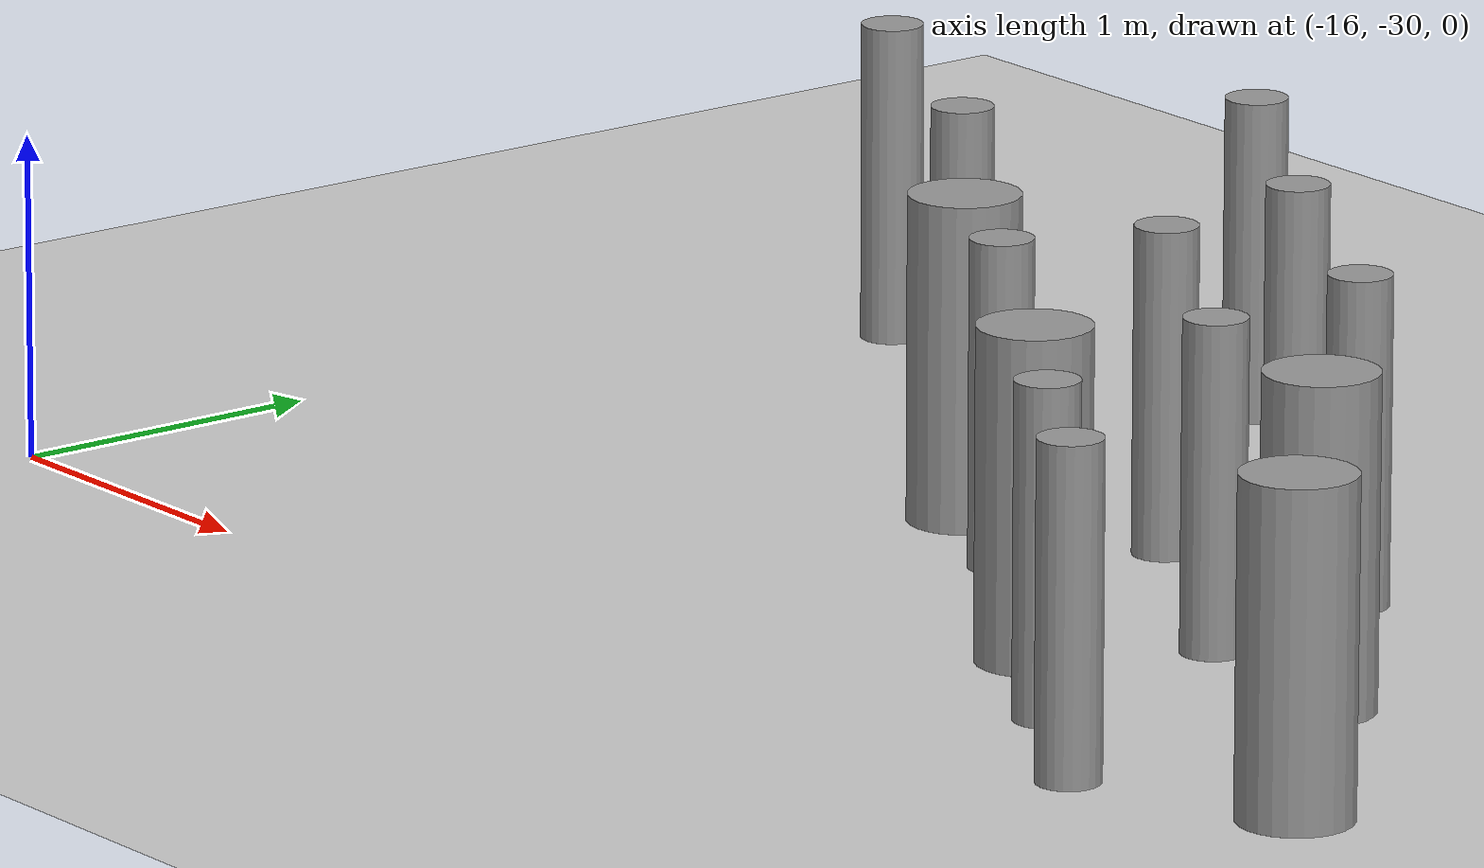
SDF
<sdf version="1.6">
 <world name="default">
  <model name="ground_plane">
   <static>1</static>
   <link name="link">
    <collision name="collision">
     <geometry><plane><normal>0 0 1</normal><size>100 100</size></plane></geometry>
     <surface><friction><ode><mu>100</mu><mu2>50</mu2></ode></friction></surface>
    </collision>
    <visual name="visual">
     <cast_shadows>0</cast_shadows>
     <geometry><plane><normal>0 0 1</normal><size>100 100</size></plane></geometry>
     <material>
      <script><uri>file://media/materials/scripts/gazebo.material</uri><name>Gazebo/Grey</name></script>
     </material>
    </visual>
   </link>
  </model>
  <model name="cyl_wall_clone_clone_1_clone_clone_0_clone">
   <link name="link_0">
    <pose>-2.73893 -0.366465 0 0 -0 0</pose>
    <inertial>
     <mass>0.0374993</mass>
     <inertia>
      <ixx>0.00321281</ixx>
      <ixy>0</ixy>
      <ixz>0</ixz>
      <iyy>0.00321281</iyy>
      <iyz>0</iyz>
      <izz>0.000175774</izz>
     </inertia>
    </inertial>
    <visual name="visual">
     <geometry><cylinder><radius>0.0968661</radius><length>1</length></cylinder></geometry>
     <material>
      <lighting>1</lighting>
      <script><uri>file://media/materials/scripts/gazebo.material</uri><name>Gazebo/Grey</name></script>
      <ambient>0.3 0.3 0.3 1</ambient>
      <diffuse>0.7 0.7 0.7 1</diffuse>
      <specular>0.01 0.01 0.01 1</specular>
      <emissive>0 0 0 1</emissive>
     </material>
    </visual>
    <collision name="collision">
     <geometry><cylinder><radius>0.096866</radius><length>1</length></cylinder></geometry>
     <surface>
      <friction>
       <ode><mu>1</mu><mu2>1</mu2><fdir1>0 0 0</fdir1><slip1>0</slip1><slip2>0</slip2></ode>
       <torsional>
        <coefficient>1</coefficient>
        <patch_radius>0</patch_radius>
        <surface_radius>0</surface_radius>
        <use_patch_radius>1</use_patch_radius>
        <ode><slip>0</slip></ode>
       </torsional>
      </friction>
      <bounce><restitution_coefficient>0</restitution_coefficient><threshold>1e+06</threshold></bounce>
      <contact>
       <collide_without_contact>0</collide_without_contact>
       <collide_without_contact_bitmask>1</collide_without_contact_bitmask>
       <collide_bitmask>1</collide_bitmask>
       <ode>
        <soft_cfm>0</soft_cfm>
        <soft_erp>0.2</soft_erp>
        <kp>1e+13</kp>
        <kd>1</kd>
        <max_vel>0.01</max_vel>
        <min_depth>0</min_depth>
       </ode>
       <bullet>
        <split_impulse>1</split_impulse>
        <split_impulse_penetration_threshold>-0.01</split_impulse_penetration_threshold>
        <soft_cfm>0</soft_cfm>
        <soft_erp>0.2</soft_erp>
        <kp>1e+13</kp>
        <kd>1</kd>
       </bullet>
      </contact>
     </surface>
    </collision>
   </link>
   <link name="link_0_clone">
    <pose>-1.73893 0.61877 0 0 -0 0</pose>
    <inertial>
     <mass>0.0374993</mass>
     <inertia>
      <ixx>0.00321281</ixx>
      <ixy>0</ixy>
      <ixz>0</ixz>
      <iyy>0.00321281</iyy>
      <iyz>0</iyz>
      <izz>0.000175774</izz>
     </inertia>
    </inertial>
    <visual name="visual">
     <geometry><cylinder><radius>0.0968661</radius><length>1</length></cylinder></geometry>
     <material>
      <lighting>1</lighting>
      <script><uri>file://media/materials/scripts/gazebo.material</uri><name>Gazebo/Grey</name></script>
      <ambient>0.3 0.3 0.3 1</ambient>
      <diffuse>0.7 0.7 0.7 1</diffuse>
      <specular>0.01 0.01 0.01 1</specular>
      <emissive>0 0 0 1</emissive>
      <shader type="pixel"/>
     </material>
    </visual>
    <collision name="collision">
     <geometry><cylinder><radius>0.096866</radius><length>1</length></cylinder></geometry>
     <surface>
      <friction>
       <ode><mu>1</mu><mu2>1</mu2><fdir1>0 0 0</fdir1><slip1>0</slip1><slip2>0</slip2></ode>
       <torsional>
        <coefficient>1</coefficient>
        <patch_radius>0</patch_radius>
        <surface_radius>0</surface_radius>
        <use_patch_radius>1</use_patch_radius>
        <ode><slip>0</slip></ode>
       </torsional>
      </friction>
      <bounce><restitution_coefficient>0</restitution_coefficient><threshold>1e+06</threshold></bounce>
      <contact>
       <collide_without_contact>0</collide_without_contact>
       <collide_without_contact_bitmask>1</collide_without_contact_bitmask>
       <collide_bitmask>1</collide_bitmask>
       <ode>
        <soft_cfm>0</soft_cfm>
        <soft_erp>0.2</soft_erp>
        <kp>1e+13</kp>
        <kd>1</kd>
        <max_vel>0.01</max_vel>
        <min_depth>0</min_depth>
       </ode>
       <bullet>
        <split_impulse>1</split_impulse>
        <split_impulse_penetration_threshold>-0.01</split_impulse_penetration_threshold>
        <soft_cfm>0</soft_cfm>
        <soft_erp>0.2</soft_erp>
        <kp>1e+13</kp>
        <kd>1</kd>
       </bullet>
      </contact>
     </surface>
    </collision>
   </link>
   <link name="link_0_clone_clone">
    <pose>-0.327073 0.143919 0 0 -0 0</pose>
    <inertial>
     <mass>0.0374993</mass>
     <inertia>
      <ixx>0.00321281</ixx>
      <ixy>0</ixy>
      <ixz>0</ixz>
      <iyy>0.00321281</iyy>
      <iyz>0</iyz>
      <izz>0.000175774</izz>
     </inertia>
    </inertial>
    <visual name="visual">
     <geometry><cylinder><radius>0.0968661</radius><length>1</length></cylinder></geometry>
     <material>
      <lighting>1</lighting>
      <script><uri>file://media/materials/scripts/gazebo.material</uri><name>Gazebo/Grey</name></script>
      <ambient>0.3 0.3 0.3 1</ambient>
      <diffuse>0.7 0.7 0.7 1</diffuse>
      <specular>0.01 0.01 0.01 1</specular>
      <emissive>0 0 0 1</emissive>
      <shader type="pixel"/>
     </material>
    </visual>
    <collision name="collision">
     <geometry><cylinder><radius>0.096866</radius><length>1</length></cylinder></geometry>
     <surface>
      <friction>
       <ode><mu>1</mu><mu2>1</mu2><fdir1>0 0 0</fdir1><slip1>0</slip1><slip2>0</slip2></ode>
       <torsional>
        <coefficient>1</coefficient>
        <patch_radius>0</patch_radius>
        <surface_radius>0</surface_radius>
        <use_patch_radius>1</use_patch_radius>
        <ode><slip>0</slip></ode>
       </torsional>
      </friction>
      <bounce><restitution_coefficient>0</restitution_coefficient><threshold>1e+06</threshold></bounce>
      <contact>
       <collide_without_contact>0</collide_without_contact>
       <collide_without_contact_bitmask>1</collide_without_contact_bitmask>
       <collide_bitmask>1</collide_bitmask>
       <ode>
        <soft_cfm>0</soft_cfm>
        <soft_erp>0.2</soft_erp>
        <kp>1e+13</kp>
        <kd>1</kd>
        <max_vel>0.01</max_vel>
        <min_depth>0</min_depth>
       </ode>
       <bullet>
        <split_impulse>1</split_impulse>
        <split_impulse_penetration_threshold>-0.01</split_impulse_penetration_threshold>
        <soft_cfm>0</soft_cfm>
        <soft_erp>0.2</soft_erp>
        <kp>1e+13</kp>
        <kd>1</kd>
       </bullet>
      </contact>
     </surface>
    </collision>
   </link>
   <link name="link_0_clone_clone_0">
    <pose>1.26107 -0.419359 0 0 -0 0</pose>
    <inertial>
     <mass>0.0374993</mass>
     <inertia>
      <ixx>0.00321281</ixx>
      <ixy>0</ixy>
      <ixz>0</ixz>
      <iyy>0.00321281</iyy>
      <iyz>0</iyz>
      <izz>0.000175774</izz>
     </inertia>
    </inertial>
    <visual name="visual">
     <geometry><cylinder><radius>0.0968661</radius><length>1</length></cylinder></geometry>
     <material>
      <lighting>1</lighting>
      <script><uri>file://media/materials/scripts/gazebo.material</uri><name>Gazebo/Grey</name></script>
      <ambient>0.3 0.3 0.3 1</ambient>
      <diffuse>0.7 0.7 0.7 1</diffuse>
      <specular>0.01 0.01 0.01 1</specular>
      <emissive>0 0 0 1</emissive>
      <shader type="pixel"/>
     </material>
    </visual>
    <collision name="collision">
     <geometry><cylinder><radius>0.096866</radius><length>1</length></cylinder></geometry>
     <surface>
      <friction>
       <ode><mu>1</mu><mu2>1</mu2><fdir1>0 0 0</fdir1><slip1>0</slip1><slip2>0</slip2></ode>
       <torsional>
        <coefficient>1</coefficient>
        <patch_radius>0</patch_radius>
        <surface_radius>0</surface_radius>
        <use_patch_radius>1</use_patch_radius>
        <ode><slip>0</slip></ode>
       </torsional>
      </friction>
      <bounce><restitution_coefficient>0</restitution_coefficient><threshold>1e+06</threshold></bounce>
      <contact>
       <collide_without_contact>0</collide_without_contact>
       <collide_without_contact_bitmask>1</collide_without_contact_bitmask>
       <collide_bitmask>1</collide_bitmask>
       <ode>
        <soft_cfm>0</soft_cfm>
        <soft_erp>0.2</soft_erp>
        <kp>1e+13</kp>
        <kd>1</kd>
        <max_vel>0.01</max_vel>
        <min_depth>0</min_depth>
       </ode>
       <bullet>
        <split_impulse>1</split_impulse>
        <split_impulse_penetration_threshold>-0.01</split_impulse_penetration_threshold>
        <soft_cfm>0</soft_cfm>
        <soft_erp>0.2</soft_erp>
        <kp>1e+13</kp>
        <kd>1</kd>
       </bullet>
      </contact>
     </surface>
    </collision>
   </link>
   <link name="link_0_clone_clone_1">
    <pose>-1.73893 -0.277168 0 0 -0 0</pose>
    <inertial>
     <mass>0.0374993</mass>
     <inertia>
      <ixx>0.00321281</ixx>
      <ixy>0</ixy>
      <ixz>0</ixz>
      <iyy>0.00321281</iyy>
      <iyz>0</iyz>
      <izz>0.000175774</izz>
     </inertia>
    </inertial>
    <visual name="visual">
     <geometry><cylinder><radius>0.0968661</radius><length>1</length></cylinder></geometry>
     <material>
      <lighting>1</lighting>
      <script><uri>file://media/materials/scripts/gazebo.material</uri><name>Gazebo/Grey</name></script>
      <ambient>0.3 0.3 0.3 1</ambient>
      <diffuse>0.7 0.7 0.7 1</diffuse>
      <specular>0.01 0.01 0.01 1</specular>
      <emissive>0 0 0 1</emissive>
      <shader type="pixel"/>
     </material>
    </visual>
    <collision name="collision">
     <geometry><cylinder><radius>0.096866</radius><length>1</length></cylinder></geometry>
     <surface>
      <friction>
       <ode><mu>1</mu><mu2>1</mu2><fdir1>0 0 0</fdir1><slip1>0</slip1><slip2>0</slip2></ode>
       <torsional>
        <coefficient>1</coefficient>
        <patch_radius>0</patch_radius>
        <surface_radius>0</surface_radius>
        <use_patch_radius>1</use_patch_radius>
        <ode><slip>0</slip></ode>
       </torsional>
      </friction>
      <bounce><restitution_coefficient>0</restitution_coefficient><threshold>1e+06</threshold></bounce>
      <contact>
       <collide_without_contact>0</collide_without_contact>
       <collide_without_contact_bitmask>1</collide_without_contact_bitmask>
       <collide_bitmask>1</collide_bitmask>
       <ode>
        <soft_cfm>0</soft_cfm>
        <soft_erp>0.2</soft_erp>
        <kp>1e+13</kp>
        <kd>1</kd>
        <max_vel>0.01</max_vel>
        <min_depth>0</min_depth>
       </ode>
       <bullet>
        <split_impulse>1</split_impulse>
        <split_impulse_penetration_threshold>-0.01</split_impulse_penetration_threshold>
        <soft_cfm>0</soft_cfm>
        <soft_erp>0.2</soft_erp>
        <kp>1e+13</kp>
        <kd>1</kd>
       </bullet>
      </contact>
     </surface>
    </collision>
   </link>
   <link name="link_0_clone_clone_2">
    <pose>-0.738934 0.593961 0 0 -0 0</pose>
    <inertial>
     <mass>0.0374993</mass>
     <inertia>
      <ixx>0.00321281</ixx>
      <ixy>0</ixy>
      <ixz>0</ixz>
      <iyy>0.00321281</iyy>
      <iyz>0</iyz>
      <izz>0.000175774</izz>
     </inertia>
    </inertial>
    <visual name="visual">
     <geometry><cylinder><radius>0.0968661</radius><length>1</length></cylinder></geometry>
     <material>
      <lighting>1</lighting>
      <script><uri>file://media/materials/scripts/gazebo.material</uri><name>Gazebo/Grey</name></script>
      <ambient>0.3 0.3 0.3 1</ambient>
      <diffuse>0.7 0.7 0.7 1</diffuse>
      <specular>0.01 0.01 0.01 1</specular>
      <emissive>0 0 0 1</emissive>
      <shader type="pixel"/>
     </material>
    </visual>
    <collision name="collision">
     <geometry><cylinder><radius>0.096866</radius><length>1</length></cylinder></geometry>
     <surface>
      <friction>
       <ode><mu>1</mu><mu2>1</mu2><fdir1>0 0 0</fdir1><slip1>0</slip1><slip2>0</slip2></ode>
       <torsional>
        <coefficient>1</coefficient>
        <patch_radius>0</patch_radius>
        <surface_radius>0</surface_radius>
        <use_patch_radius>1</use_patch_radius>
        <ode><slip>0</slip></ode>
       </torsional>
      </friction>
      <bounce><restitution_coefficient>0</restitution_coefficient><threshold>1e+06</threshold></bounce>
      <contact>
       <collide_without_contact>0</collide_without_contact>
       <collide_without_contact_bitmask>1</collide_without_contact_bitmask>
       <collide_bitmask>1</collide_bitmask>
       <ode>
        <soft_cfm>0</soft_cfm>
        <soft_erp>0.2</soft_erp>
        <kp>1e+13</kp>
        <kd>1</kd>
        <max_vel>0.01</max_vel>
        <min_depth>0</min_depth>
       </ode>
       <bullet>
        <split_impulse>1</split_impulse>
        <split_impulse_penetration_threshold>-0.01</split_impulse_penetration_threshold>
        <soft_cfm>0</soft_cfm>
        <soft_erp>0.2</soft_erp>
        <kp>1e+13</kp>
        <kd>1</kd>
       </bullet>
      </contact>
     </surface>
    </collision>
   </link>
   <link name="link_0_clone_clone_3">
    <pose>0.261066 0.624849 0 0 -0 0</pose>
    <inertial>
     <mass>0.0374993</mass>
     <inertia>
      <ixx>0.00321281</ixx>
      <ixy>0</ixy>
      <ixz>0</ixz>
      <iyy>0.00321281</iyy>
      <iyz>0</iyz>
      <izz>0.000175774</izz>
     </inertia>
    </inertial>
    <visual name="visual">
     <geometry><cylinder><radius>0.0968661</radius><length>1</length></cylinder></geometry>
     <material>
      <lighting>1</lighting>
      <script><uri>file://media/materials/scripts/gazebo.material</uri><name>Gazebo/Grey</name></script>
      <ambient>0.3 0.3 0.3 1</ambient>
      <diffuse>0.7 0.7 0.7 1</diffuse>
      <specular>0.01 0.01 0.01 1</specular>
      <emissive>0 0 0 1</emissive>
      <shader type="pixel"/>
     </material>
    </visual>
    <collision name="collision">
     <geometry><cylinder><radius>0.096866</radius><length>1</length></cylinder></geometry>
     <surface>
      <friction>
       <ode><mu>1</mu><mu2>1</mu2><fdir1>0 0 0</fdir1><slip1>0</slip1><slip2>0</slip2></ode>
       <torsional>
        <coefficient>1</coefficient>
        <patch_radius>0</patch_radius>
        <surface_radius>0</surface_radius>
        <use_patch_radius>1</use_patch_radius>
        <ode><slip>0</slip></ode>
       </torsional>
      </friction>
      <bounce><restitution_coefficient>0</restitution_coefficient><threshold>1e+06</threshold></bounce>
      <contact>
       <collide_without_contact>0</collide_without_contact>
       <collide_without_contact_bitmask>1</collide_without_contact_bitmask>
       <collide_bitmask>1</collide_bitmask>
       <ode>
        <soft_cfm>0</soft_cfm>
        <soft_erp>0.2</soft_erp>
        <kp>1e+13</kp>
        <kd>1</kd>
        <max_vel>0.01</max_vel>
        <min_depth>0</min_depth>
       </ode>
       <bullet>
        <split_impulse>1</split_impulse>
        <split_impulse_penetration_threshold>-0.01</split_impulse_penetration_threshold>
        <soft_cfm>0</soft_cfm>
        <soft_erp>0.2</soft_erp>
        <kp>1e+13</kp>
        <kd>1</kd>
       </bullet>
      </contact>
     </surface>
    </collision>
   </link>
   <link name="link_0_clone_clone_4">
    <pose>-0.239049 -0.353105 0 0 -0 0</pose>
    <inertial>
     <mass>0.0374993</mass>
     <inertia>
      <ixx>0.00321281</ixx>
      <ixy>0</ixy>
      <ixz>0</ixz>
      <iyy>0.00321281</iyy>
      <iyz>0</iyz>
      <izz>0.000175774</izz>
     </inertia>
    </inertial>
    <visual name="visual">
     <geometry><cylinder><radius>0.0968661</radius><length>1</length></cylinder></geometry>
     <material>
      <lighting>1</lighting>
      <script><uri>file://media/materials/scripts/gazebo.material</uri><name>Gazebo/Grey</name></script>
      <ambient>0.3 0.3 0.3 1</ambient>
      <diffuse>0.7 0.7 0.7 1</diffuse>
      <specular>0.01 0.01 0.01 1</specular>
      <emissive>0 0 0 1</emissive>
      <shader type="pixel"/>
     </material>
    </visual>
    <collision name="collision">
     <geometry><cylinder><radius>0.096866</radius><length>1</length></cylinder></geometry>
     <surface>
      <friction>
       <ode><mu>1</mu><mu2>1</mu2><fdir1>0 0 0</fdir1><slip1>0</slip1><slip2>0</slip2></ode>
       <torsional>
        <coefficient>1</coefficient>
        <patch_radius>0</patch_radius>
        <surface_radius>0</surface_radius>
        <use_patch_radius>1</use_patch_radius>
        <ode><slip>0</slip></ode>
       </torsional>
      </friction>
      <bounce><restitution_coefficient>0</restitution_coefficient><threshold>1e+06</threshold></bounce>
      <contact>
       <collide_without_contact>0</collide_without_contact>
       <collide_without_contact_bitmask>1</collide_without_contact_bitmask>
       <collide_bitmask>1</collide_bitmask>
       <ode>
        <soft_cfm>0</soft_cfm>
        <soft_erp>0.2</soft_erp>
        <kp>1e+13</kp>
        <kd>1</kd>
        <max_vel>0.01</max_vel>
        <min_depth>0</min_depth>
       </ode>
       <bullet>
        <split_impulse>1</split_impulse>
        <split_impulse_penetration_threshold>-0.01</split_impulse_penetration_threshold>
        <soft_cfm>0</soft_cfm>
        <soft_erp>0.2</soft_erp>
        <kp>1e+13</kp>
        <kd>1</kd>
       </bullet>
      </contact>
     </surface>
    </collision>
   </link>
   <link name="link_0_clone_clone_5">
    <pose>0.672792 0.143919 0 0 -0 0</pose>
    <inertial>
     <mass>0.0374993</mass>
     <inertia>
      <ixx>0.00321281</ixx>
      <ixy>0</ixy>
      <ixz>0</ixz>
      <iyy>0.00321281</iyy>
      <iyz>0</iyz>
      <izz>0.000175774</izz>
     </inertia>
    </inertial>
    <visual name="visual">
     <geometry><cylinder><radius>0.0968661</radius><length>1</length></cylinder></geometry>
     <material>
      <lighting>1</lighting>
      <script><uri>file://media/materials/scripts/gazebo.material</uri><name>Gazebo/Grey</name></script>
      <ambient>0.3 0.3 0.3 1</ambient>
      <diffuse>0.7 0.7 0.7 1</diffuse>
      <specular>0.01 0.01 0.01 1</specular>
      <emissive>0 0 0 1</emissive>
      <shader type="pixel"/>
     </material>
    </visual>
    <collision name="collision">
     <geometry><cylinder><radius>0.096866</radius><length>1</length></cylinder></geometry>
     <surface>
      <friction>
       <ode><mu>1</mu><mu2>1</mu2><fdir1>0 0 0</fdir1><slip1>0</slip1><slip2>0</slip2></ode>
       <torsional>
        <coefficient>1</coefficient>
        <patch_radius>0</patch_radius>
        <surface_radius>0</surface_radius>
        <use_patch_radius>1</use_patch_radius>
        <ode><slip>0</slip></ode>
       </torsional>
      </friction>
      <bounce><restitution_coefficient>0</restitution_coefficient><threshold>1e+06</threshold></bounce>
      <contact>
       <collide_without_contact>0</collide_without_contact>
       <collide_without_contact_bitmask>1</collide_without_contact_bitmask>
       <collide_bitmask>1</collide_bitmask>
       <ode>
        <soft_cfm>0</soft_cfm>
        <soft_erp>0.2</soft_erp>
        <kp>1e+13</kp>
        <kd>1</kd>
        <max_vel>0.01</max_vel>
        <min_depth>0</min_depth>
       </ode>
       <bullet>
        <split_impulse>1</split_impulse>
        <split_impulse_penetration_threshold>-0.01</split_impulse_penetration_threshold>
        <soft_cfm>0</soft_cfm>
        <soft_erp>0.2</soft_erp>
        <kp>1e+13</kp>
        <kd>1</kd>
       </bullet>
      </contact>
     </surface>
    </collision>
   </link>
   <link name="link_0_clone_clone_6">
    <pose>1.84596 -0.433423 0 0 -0 0</pose>
    <inertial>
     <mass>0.0374993</mass>
     <inertia>
      <ixx>0.00321281</ixx>
      <ixy>0</ixy>
      <ixz>0</ixz>
      <iyy>0.00321281</iyy>
      <iyz>0</iyz>
      <izz>0.000175774</izz>
     </inertia>
    </inertial>
    <visual name="visual">
     <geometry><cylinder><radius>0.0968661</radius><length>1</length></cylinder></geometry>
     <material>
      <lighting>1</lighting>
      <script><uri>file://media/materials/scripts/gazebo.material</uri><name>Gazebo/Grey</name></script>
      <ambient>0.3 0.3 0.3 1</ambient>
      <diffuse>0.7 0.7 0.7 1</diffuse>
      <specular>0.01 0.01 0.01 1</specular>
      <emissive>0 0 0 1</emissive>
      <shader type="pixel"/>
     </material>
    </visual>
    <collision name="collision">
     <geometry><cylinder><radius>0.096866</radius><length>1</length></cylinder></geometry>
     <surface>
      <friction>
       <ode><mu>1</mu><mu2>1</mu2><fdir1>0 0 0</fdir1><slip1>0</slip1><slip2>0</slip2></ode>
       <torsional>
        <coefficient>1</coefficient>
        <patch_radius>0</patch_radius>
        <surface_radius>0</surface_radius>
        <use_patch_radius>1</use_patch_radius>
        <ode><slip>0</slip></ode>
       </torsional>
      </friction>
      <bounce><restitution_coefficient>0</restitution_coefficient><threshold>1e+06</threshold></bounce>
      <contact>
       <collide_without_contact>0</collide_without_contact>
       <collide_without_contact_bitmask>1</collide_without_contact_bitmask>
       <collide_bitmask>1</collide_bitmask>
       <ode>
        <soft_cfm>0</soft_cfm>
        <soft_erp>0.2</soft_erp>
        <kp>1e+13</kp>
        <kd>1</kd>
        <max_vel>0.01</max_vel>
        <min_depth>0</min_depth>
       </ode>
       <bullet>
        <split_impulse>1</split_impulse>
        <split_impulse_penetration_threshold>-0.01</split_impulse_penetration_threshold>
        <soft_cfm>0</soft_cfm>
        <soft_erp>0.2</soft_erp>
        <kp>1e+13</kp>
        <kd>1</kd>
       </bullet>
      </contact>
     </surface>
    </collision>
   </link>
   <link name="link_1">
    <pose>-0.738934 -0.397931 0 0 -0 0</pose>
    <inertial>
     <mass>0.117398</mass>
     <inertia>
      <ixx>0.0106445</ixx>
      <ixy>0</ixy>
      <ixz>0</ixz>
      <iyy>0.0106445</iyy>
      <iyz>0</iyz>
      <izz>0.00172278</izz>
     </inertia>
    </inertial>
    <visual name="visual">
     <geometry><cylinder><radius>0.171317</radius><length>1</length></cylinder></geometry>
     <material>
      <lighting>1</lighting>
      <script><uri>file://media/materials/scripts/gazebo.material</uri><name>Gazebo/Grey</name></script>
      <ambient>0.3 0.3 0.3 1</ambient>
      <diffuse>0.7 0.7 0.7 1</diffuse>
      <specular>0.01 0.01 0.01 1</specular>
      <emissive>0 0 0 1</emissive>
     </material>
    </visual>
    <collision name="collision">
     <geometry><cylinder><radius>0.171317</radius><length>1</length></cylinder></geometry>
     <surface>
      <friction>
       <ode><mu>1</mu><mu2>1</mu2><fdir1>0 0 0</fdir1><slip1>0</slip1><slip2>0</slip2></ode>
       <torsional>
        <coefficient>1</coefficient>
        <patch_radius>0</patch_radius>
        <surface_radius>0</surface_radius>
        <use_patch_radius>1</use_patch_radius>
        <ode><slip>0</slip></ode>
       </torsional>
      </friction>
      <bounce><restitution_coefficient>0</restitution_coefficient><threshold>1e+06</threshold></bounce>
      <contact>
       <collide_without_contact>0</collide_without_contact>
       <collide_without_contact_bitmask>1</collide_without_contact_bitmask>
       <collide_bitmask>1</collide_bitmask>
       <ode>
        <soft_cfm>0</soft_cfm>
        <soft_erp>0.2</soft_erp>
        <kp>1e+13</kp>
        <kd>1</kd>
        <max_vel>0.01</max_vel>
        <min_depth>0</min_depth>
       </ode>
       <bullet>
        <split_impulse>1</split_impulse>
        <split_impulse_penetration_threshold>-0.01</split_impulse_penetration_threshold>
        <soft_cfm>0</soft_cfm>
        <soft_erp>0.2</soft_erp>
        <kp>1e+13</kp>
        <kd>1</kd>
       </bullet>
      </contact>
     </surface>
    </collision>
   </link>
   <link name="link_1_clone">
    <pose>0.697784 -0.380861 0 0 -0 0</pose>
    <inertial>
     <mass>0.117398</mass>
     <inertia>
      <ixx>0.0106445</ixx>
      <ixy>0</ixy>
      <ixz>0</ixz>
      <iyy>0.0106445</iyy>
      <iyz>0</iyz>
      <izz>0.00172278</izz>
     </inertia>
    </inertial>
    <visual name="visual">
     <geometry><cylinder><radius>0.171317</radius><length>1</length></cylinder></geometry>
     <material>
      <lighting>1</lighting>
      <script><uri>file://media/materials/scripts/gazebo.material</uri><name>Gazebo/Grey</name></script>
      <ambient>0.3 0.3 0.3 1</ambient>
      <diffuse>0.7 0.7 0.7 1</diffuse>
      <specular>0.01 0.01 0.01 1</specular>
      <emissive>0 0 0 1</emissive>
      <shader type="pixel"/>
     </material>
    </visual>
    <collision name="collision">
     <geometry><cylinder><radius>0.171317</radius><length>1</length></cylinder></geometry>
     <surface>
      <friction>
       <ode><mu>1</mu><mu2>1</mu2><fdir1>0 0 0</fdir1><slip1>0</slip1><slip2>0</slip2></ode>
       <torsional>
        <coefficient>1</coefficient>
        <patch_radius>0</patch_radius>
        <surface_radius>0</surface_radius>
        <use_patch_radius>1</use_patch_radius>
        <ode><slip>0</slip></ode>
       </torsional>
      </friction>
      <bounce><restitution_coefficient>0</restitution_coefficient><threshold>1e+06</threshold></bounce>
      <contact>
       <collide_without_contact>0</collide_without_contact>
       <collide_without_contact_bitmask>1</collide_without_contact_bitmask>
       <collide_bitmask>1</collide_bitmask>
       <ode>
        <soft_cfm>0</soft_cfm>
        <soft_erp>0.2</soft_erp>
        <kp>1e+13</kp>
        <kd>1</kd>
        <max_vel>0.01</max_vel>
        <min_depth>0</min_depth>
       </ode>
       <bullet>
        <split_impulse>1</split_impulse>
        <split_impulse_penetration_threshold>-0.01</split_impulse_penetration_threshold>
        <soft_cfm>0</soft_cfm>
        <soft_erp>0.2</soft_erp>
        <kp>1e+13</kp>
        <kd>1</kd>
       </bullet>
      </contact>
     </surface>
    </collision>
   </link>
   <link name="link_1_clone_0">
    <pose>1.26107 0.358974 0 0 -0 0</pose>
    <inertial>
     <mass>0.117398</mass>
     <inertia>
      <ixx>0.0106445</ixx>
      <ixy>0</ixy>
      <ixz>0</ixz>
      <iyy>0.0106445</iyy>
      <iyz>0</iyz>
      <izz>0.00172278</izz>
     </inertia>
    </inertial>
    <visual name="visual">
     <geometry><cylinder><radius>0.171317</radius><length>1</length></cylinder></geometry>
     <material>
      <lighting>1</lighting>
      <script><uri>file://media/materials/scripts/gazebo.material</uri><name>Gazebo/Grey</name></script>
      <ambient>0.3 0.3 0.3 1</ambient>
      <diffuse>0.7 0.7 0.7 1</diffuse>
      <specular>0.01 0.01 0.01 1</specular>
      <emissive>0 0 0 1</emissive>
      <shader type="pixel"/>
     </material>
    </visual>
    <collision name="collision">
     <geometry><cylinder><radius>0.171317</radius><length>1</length></cylinder></geometry>
     <surface>
      <friction>
       <ode><mu>1</mu><mu2>1</mu2><fdir1>0 0 0</fdir1><slip1>0</slip1><slip2>0</slip2></ode>
       <torsional>
        <coefficient>1</coefficient>
        <patch_radius>0</patch_radius>
        <surface_radius>0</surface_radius>
        <use_patch_radius>1</use_patch_radius>
        <ode><slip>0</slip></ode>
       </torsional>
      </friction>
      <bounce><restitution_coefficient>0</restitution_coefficient><threshold>1e+06</threshold></bounce>
      <contact>
       <collide_without_contact>0</collide_without_contact>
       <collide_without_contact_bitmask>1</collide_without_contact_bitmask>
       <collide_bitmask>1</collide_bitmask>
       <ode>
        <soft_cfm>0</soft_cfm>
        <soft_erp>0.2</soft_erp>
        <kp>1e+13</kp>
        <kd>1</kd>
        <max_vel>0.01</max_vel>
        <min_depth>0</min_depth>
       </ode>
       <bullet>
        <split_impulse>1</split_impulse>
        <split_impulse_penetration_threshold>-0.01</split_impulse_penetration_threshold>
        <soft_cfm>0</soft_cfm>
        <soft_erp>0.2</soft_erp>
        <kp>1e+13</kp>
        <kd>1</kd>
       </bullet>
      </contact>
     </surface>
    </collision>
   </link>
   <link name="link_1_clone_1">
    <pose>2.26107 0.143919 0 0 -0 0</pose>
    <inertial>
     <mass>0.117398</mass>
     <inertia>
      <ixx>0.0106445</ixx>
      <ixy>0</ixy>
      <ixz>0</ixz>
      <iyy>0.0106445</iyy>
      <iyz>0</iyz>
      <izz>0.00172278</izz>
     </inertia>
    </inertial>
    <visual name="visual">
     <geometry><cylinder><radius>0.171317</radius><length>1</length></cylinder></geometry>
     <material>
      <lighting>1</lighting>
      <script><uri>file://media/materials/scripts/gazebo.material</uri><name>Gazebo/Grey</name></script>
      <ambient>0.3 0.3 0.3 1</ambient>
      <diffuse>0.7 0.7 0.7 1</diffuse>
      <specular>0.01 0.01 0.01 1</specular>
      <emissive>0 0 0 1</emissive>
      <shader type="pixel"/>
     </material>
    </visual>
    <collision name="collision">
     <geometry><cylinder><radius>0.171317</radius><length>1</length></cylinder></geometry>
     <surface>
      <friction>
       <ode><mu>1</mu><mu2>1</mu2><fdir1>0 0 0</fdir1><slip1>0</slip1><slip2>0</slip2></ode>
       <torsional>
        <coefficient>1</coefficient>
        <patch_radius>0</patch_radius>
        <surface_radius>0</surface_radius>
        <use_patch_radius>1</use_patch_radius>
        <ode><slip>0</slip></ode>
       </torsional>
      </friction>
      <bounce><restitution_coefficient>0</restitution_coefficient><threshold>1e+06</threshold></bounce>
      <contact>
       <collide_without_contact>0</collide_without_contact>
       <collide_without_contact_bitmask>1</collide_without_contact_bitmask>
       <collide_bitmask>1</collide_bitmask>
       <ode>
        <soft_cfm>0</soft_cfm>
        <soft_erp>0.2</soft_erp>
        <kp>1e+13</kp>
        <kd>1</kd>
        <max_vel>0.01</max_vel>
        <min_depth>0</min_depth>
       </ode>
       <bullet>
        <split_impulse>1</split_impulse>
        <split_impulse_penetration_threshold>-0.01</split_impulse_penetration_threshold>
        <soft_cfm>0</soft_cfm>
        <soft_erp>0.2</soft_erp>
        <kp>1e+13</kp>
        <kd>1</kd>
       </bullet>
      </contact>
     </surface>
    </collision>
   </link>
   <static>1</static>
   <pose>-12.9363 -28.2398 0.5 0 0 -0.549185</pose>
  </model>
 </world>
</sdf>
